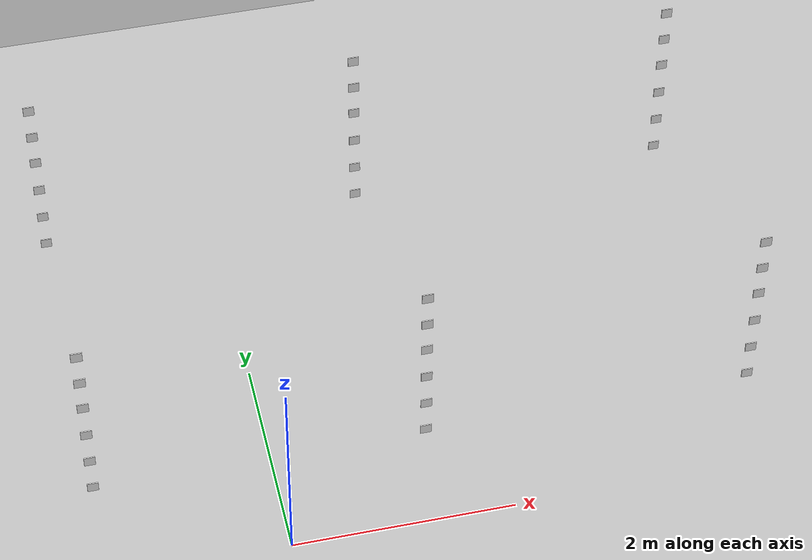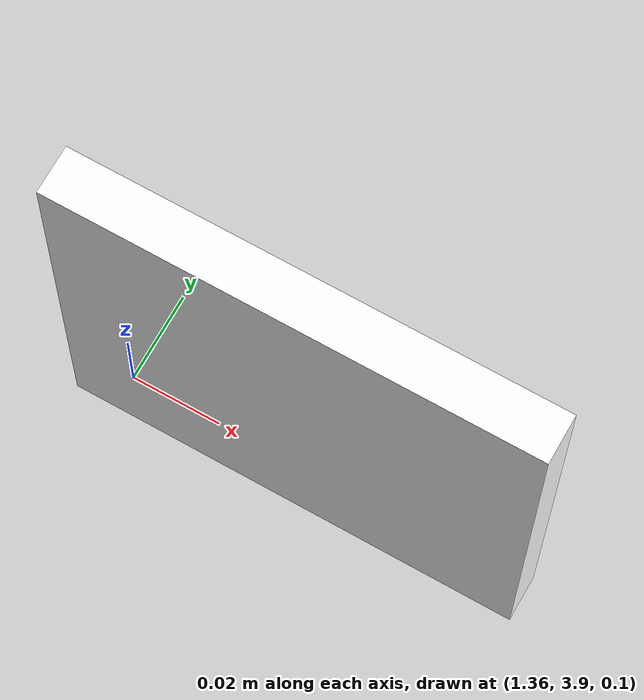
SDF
<sdf version="1.6">
 <world name="default">
  <include><uri>model://ground_plane</uri></include>
  <include><uri>model://sun</uri></include>
  <model name="stag_r1c1_l1">
   <static>true</static>
   <pose>-1.6 0.9 0.146 1.5708 0 0</pose>
   <link name="marker_link">
    <collision name="collision"><geometry><box><size>0.1 0.1 0.01</size></box></geometry></collision>
    <visual name="visual">
     <geometry><box><size>0.1 0.1 0.01</size></box></geometry>
     <material>
      <script>
       <uri>model://STag_marker/materials/scripts</uri>
       <uri>model://STag_marker/materials/textures</uri>
       <name>STagMarker/marker_00219</name>
      </script>
      <ambient>1 1 1 1</ambient>
      <diffuse>1 1 1 1</diffuse>
     </material>
     <pose>0 0 0.001 0 0 0</pose>
    </visual>
   </link>
  </model>
  <model name="stag_r1c1_l2">
   <static>true</static>
   <pose>-1.6 0.9 0.506 1.5708 0 0</pose>
   <link name="marker_link">
    <collision name="collision"><geometry><box><size>0.1 0.1 0.01</size></box></geometry></collision>
    <visual name="visual">
     <geometry><box><size>0.1 0.1 0.01</size></box></geometry>
     <material>
      <script>
       <uri>model://STag_marker/materials/scripts</uri>
       <uri>model://STag_marker/materials/textures</uri>
       <name>STagMarker/marker_00261</name>
      </script>
      <ambient>1 1 1 1</ambient>
      <diffuse>1 1 1 1</diffuse>
     </material>
     <pose>0 0 0.001 0 0 0</pose>
    </visual>
   </link>
  </model>
  <model name="stag_r1c1_l3">
   <static>true</static>
   <pose>-1.6 0.9 0.867 1.5708 0 0</pose>
   <link name="marker_link">
    <collision name="collision"><geometry><box><size>0.1 0.1 0.01</size></box></geometry></collision>
    <visual name="visual">
     <geometry><box><size>0.1 0.1 0.01</size></box></geometry>
     <material>
      <script>
       <uri>model://STag_marker/materials/scripts</uri>
       <uri>model://STag_marker/materials/textures</uri>
       <name>STagMarker/marker_00426</name>
      </script>
      <ambient>1 1 1 1</ambient>
      <diffuse>1 1 1 1</diffuse>
     </material>
     <pose>0 0 0.001 0 0 0</pose>
    </visual>
   </link>
  </model>
  <model name="stag_r1c1_l4">
   <static>true</static>
   <pose>-1.6 0.9 1.227 1.5708 0 0</pose>
   <link name="marker_link">
    <collision name="collision"><geometry><box><size>0.1 0.1 0.01</size></box></geometry></collision>
    <visual name="visual">
     <geometry><box><size>0.1 0.1 0.01</size></box></geometry>
     <material>
      <script>
       <uri>model://STag_marker/materials/scripts</uri>
       <uri>model://STag_marker/materials/textures</uri>
       <name>STagMarker/marker_00519</name>
      </script>
      <ambient>1 1 1 1</ambient>
      <diffuse>1 1 1 1</diffuse>
     </material>
     <pose>0 0 0.001 0 0 0</pose>
    </visual>
   </link>
  </model>
  <model name="stag_r1c1_l5">
   <static>true</static>
   <pose>-1.6 0.9 1.556 1.5708 0 0</pose>
   <link name="marker_link">
    <collision name="collision"><geometry><box><size>0.1 0.1 0.01</size></box></geometry></collision>
    <visual name="visual">
     <geometry><box><size>0.1 0.1 0.01</size></box></geometry>
     <material>
      <script>
       <uri>model://STag_marker/materials/scripts</uri>
       <uri>model://STag_marker/materials/textures</uri>
       <name>STagMarker/marker_00525</name>
      </script>
      <ambient>1 1 1 1</ambient>
      <diffuse>1 1 1 1</diffuse>
     </material>
     <pose>0 0 0.001 0 0 0</pose>
    </visual>
   </link>
  </model>
  <model name="stag_r1c1_l6">
   <static>true</static>
   <pose>-1.6 0.9 1.886 1.5708 0 0</pose>
   <link name="marker_link">
    <collision name="collision"><geometry><box><size>0.1 0.1 0.01</size></box></geometry></collision>
    <visual name="visual">
     <geometry><box><size>0.1 0.1 0.01</size></box></geometry>
     <material>
      <script>
       <uri>model://STag_marker/materials/scripts</uri>
       <uri>model://STag_marker/materials/textures</uri>
       <name>STagMarker/marker_00526</name>
      </script>
      <ambient>1 1 1 1</ambient>
      <diffuse>1 1 1 1</diffuse>
     </material>
     <pose>0 0 0.001 0 0 0</pose>
    </visual>
   </link>
  </model>
  <model name="stag_r1c2_l1">
   <static>true</static>
   <pose>1.4 0.9 0.146 1.5708 0 0</pose>
   <link name="marker_link">
    <collision name="collision"><geometry><box><size>0.1 0.1 0.01</size></box></geometry></collision>
    <visual name="visual">
     <geometry><box><size>0.1 0.1 0.01</size></box></geometry>
     <material>
      <script>
       <uri>model://STag_marker/materials/scripts</uri>
       <uri>model://STag_marker/materials/textures</uri>
       <name>STagMarker/marker_00537</name>
      </script>
      <ambient>1 1 1 1</ambient>
      <diffuse>1 1 1 1</diffuse>
     </material>
     <pose>0 0 0.001 0 0 0</pose>
    </visual>
   </link>
  </model>
  <model name="stag_r1c2_l2">
   <static>true</static>
   <pose>1.4 0.9 0.506 1.5708 0 0</pose>
   <link name="marker_link">
    <collision name="collision"><geometry><box><size>0.1 0.1 0.01</size></box></geometry></collision>
    <visual name="visual">
     <geometry><box><size>0.1 0.1 0.01</size></box></geometry>
     <material>
      <script>
       <uri>model://STag_marker/materials/scripts</uri>
       <uri>model://STag_marker/materials/textures</uri>
       <name>STagMarker/marker_00563</name>
      </script>
      <ambient>1 1 1 1</ambient>
      <diffuse>1 1 1 1</diffuse>
     </material>
     <pose>0 0 0.001 0 0 0</pose>
    </visual>
   </link>
  </model>
  <model name="stag_r1c2_l3">
   <static>true</static>
   <pose>1.4 0.9 0.867 1.5708 0 0</pose>
   <link name="marker_link">
    <collision name="collision"><geometry><box><size>0.1 0.1 0.01</size></box></geometry></collision>
    <visual name="visual">
     <geometry><box><size>0.1 0.1 0.01</size></box></geometry>
     <material>
      <script>
       <uri>model://STag_marker/materials/scripts</uri>
       <uri>model://STag_marker/materials/textures</uri>
       <name>STagMarker/marker_00578</name>
      </script>
      <ambient>1 1 1 1</ambient>
      <diffuse>1 1 1 1</diffuse>
     </material>
     <pose>0 0 0.001 0 0 0</pose>
    </visual>
   </link>
  </model>
  <model name="stag_r1c2_l4">
   <static>true</static>
   <pose>1.4 0.9 1.227 1.5708 0 0</pose>
   <link name="marker_link">
    <collision name="collision"><geometry><box><size>0.1 0.1 0.01</size></box></geometry></collision>
    <visual name="visual">
     <geometry><box><size>0.1 0.1 0.01</size></box></geometry>
     <material>
      <script>
       <uri>model://STag_marker/materials/scripts</uri>
       <uri>model://STag_marker/materials/textures</uri>
       <name>STagMarker/marker_00679</name>
      </script>
      <ambient>1 1 1 1</ambient>
      <diffuse>1 1 1 1</diffuse>
     </material>
     <pose>0 0 0.001 0 0 0</pose>
    </visual>
   </link>
  </model>
  <model name="stag_r1c2_l5">
   <static>true</static>
   <pose>1.4 0.9 1.556 1.5708 0 0</pose>
   <link name="marker_link">
    <collision name="collision"><geometry><box><size>0.1 0.1 0.01</size></box></geometry></collision>
    <visual name="visual">
     <geometry><box><size>0.1 0.1 0.01</size></box></geometry>
     <material>
      <script>
       <uri>model://STag_marker/materials/scripts</uri>
       <uri>model://STag_marker/materials/textures</uri>
       <name>STagMarker/marker_00800</name>
      </script>
      <ambient>1 1 1 1</ambient>
      <diffuse>1 1 1 1</diffuse>
     </material>
     <pose>0 0 0.001 0 0 0</pose>
    </visual>
   </link>
  </model>
  <model name="stag_r1c2_l6">
   <static>true</static>
   <pose>1.4 0.9 1.886 1.5708 0 0</pose>
   <link name="marker_link">
    <collision name="collision"><geometry><box><size>0.1 0.1 0.01</size></box></geometry></collision>
    <visual name="visual">
     <geometry><box><size>0.1 0.1 0.01</size></box></geometry>
     <material>
      <script>
       <uri>model://STag_marker/materials/scripts</uri>
       <uri>model://STag_marker/materials/textures</uri>
       <name>STagMarker/marker_00848</name>
      </script>
      <ambient>1 1 1 1</ambient>
      <diffuse>1 1 1 1</diffuse>
     </material>
     <pose>0 0 0.001 0 0 0</pose>
    </visual>
   </link>
  </model>
  <model name="stag_r1c3_l1">
   <static>true</static>
   <pose>4.4 0.9 0.146 1.5708 0 0</pose>
   <link name="marker_link">
    <collision name="collision"><geometry><box><size>0.1 0.1 0.01</size></box></geometry></collision>
    <visual name="visual">
     <geometry><box><size>0.1 0.1 0.01</size></box></geometry>
     <material>
      <script>
       <uri>model://STag_marker/materials/scripts</uri>
       <uri>model://STag_marker/materials/textures</uri>
       <name>STagMarker/marker_01138</name>
      </script>
      <ambient>1 1 1 1</ambient>
      <diffuse>1 1 1 1</diffuse>
     </material>
     <pose>0 0 0.001 0 0 0</pose>
    </visual>
   </link>
  </model>
  <model name="stag_r1c3_l2">
   <static>true</static>
   <pose>4.4 0.9 0.506 1.5708 0 0</pose>
   <link name="marker_link">
    <collision name="collision"><geometry><box><size>0.1 0.1 0.01</size></box></geometry></collision>
    <visual name="visual">
     <geometry><box><size>0.1 0.1 0.01</size></box></geometry>
     <material>
      <script>
       <uri>model://STag_marker/materials/scripts</uri>
       <uri>model://STag_marker/materials/textures</uri>
       <name>STagMarker/marker_01181</name>
      </script>
      <ambient>1 1 1 1</ambient>
      <diffuse>1 1 1 1</diffuse>
     </material>
     <pose>0 0 0.001 0 0 0</pose>
    </visual>
   </link>
  </model>
  <model name="stag_r1c3_l3">
   <static>true</static>
   <pose>4.4 0.9 0.867 1.5708 0 0</pose>
   <link name="marker_link">
    <collision name="collision"><geometry><box><size>0.1 0.1 0.01</size></box></geometry></collision>
    <visual name="visual">
     <geometry><box><size>0.1 0.1 0.01</size></box></geometry>
     <material>
      <script>
       <uri>model://STag_marker/materials/scripts</uri>
       <uri>model://STag_marker/materials/textures</uri>
       <name>STagMarker/marker_01311</name>
      </script>
      <ambient>1 1 1 1</ambient>
      <diffuse>1 1 1 1</diffuse>
     </material>
     <pose>0 0 0.001 0 0 0</pose>
    </visual>
   </link>
  </model>
  <model name="stag_r1c3_l4">
   <static>true</static>
   <pose>4.4 0.9 1.227 1.5708 0 0</pose>
   <link name="marker_link">
    <collision name="collision"><geometry><box><size>0.1 0.1 0.01</size></box></geometry></collision>
    <visual name="visual">
     <geometry><box><size>0.1 0.1 0.01</size></box></geometry>
     <material>
      <script>
       <uri>model://STag_marker/materials/scripts</uri>
       <uri>model://STag_marker/materials/textures</uri>
       <name>STagMarker/marker_01391</name>
      </script>
      <ambient>1 1 1 1</ambient>
      <diffuse>1 1 1 1</diffuse>
     </material>
     <pose>0 0 0.001 0 0 0</pose>
    </visual>
   </link>
  </model>
  <model name="stag_r1c3_l5">
   <static>true</static>
   <pose>4.4 0.9 1.556 1.5708 0 0</pose>
   <link name="marker_link">
    <collision name="collision"><geometry><box><size>0.1 0.1 0.01</size></box></geometry></collision>
    <visual name="visual">
     <geometry><box><size>0.1 0.1 0.01</size></box></geometry>
     <material>
      <script>
       <uri>model://STag_marker/materials/scripts</uri>
       <uri>model://STag_marker/materials/textures</uri>
       <name>STagMarker/marker_01396</name>
      </script>
      <ambient>1 1 1 1</ambient>
      <diffuse>1 1 1 1</diffuse>
     </material>
     <pose>0 0 0.001 0 0 0</pose>
    </visual>
   </link>
  </model>
  <model name="stag_r1c3_l6">
   <static>true</static>
   <pose>4.4 0.9 1.886 1.5708 0 0</pose>
   <link name="marker_link">
    <collision name="collision"><geometry><box><size>0.1 0.1 0.01</size></box></geometry></collision>
    <visual name="visual">
     <geometry><box><size>0.1 0.1 0.01</size></box></geometry>
     <material>
      <script>
       <uri>model://STag_marker/materials/scripts</uri>
       <uri>model://STag_marker/materials/textures</uri>
       <name>STagMarker/marker_01451</name>
      </script>
      <ambient>1 1 1 1</ambient>
      <diffuse>1 1 1 1</diffuse>
     </material>
     <pose>0 0 0.001 0 0 0</pose>
    </visual>
   </link>
  </model>
  <model name="stag_r2c1_l1">
   <static>true</static>
   <pose>-1.6 3.9 0.146 1.5708 0 0</pose>
   <link name="marker_link">
    <collision name="collision"><geometry><box><size>0.1 0.1 0.01</size></box></geometry></collision>
    <visual name="visual">
     <geometry><box><size>0.1 0.1 0.01</size></box></geometry>
     <material>
      <script>
       <uri>model://STag_marker/materials/scripts</uri>
       <uri>model://STag_marker/materials/textures</uri>
       <name>STagMarker/marker_01509</name>
      </script>
      <ambient>1 1 1 1</ambient>
      <diffuse>1 1 1 1</diffuse>
     </material>
     <pose>0 0 0.001 0 0 0</pose>
    </visual>
   </link>
  </model>
  <model name="stag_r2c1_l2">
   <static>true</static>
   <pose>-1.6 3.9 0.506 1.5708 0 0</pose>
   <link name="marker_link">
    <collision name="collision"><geometry><box><size>0.1 0.1 0.01</size></box></geometry></collision>
    <visual name="visual">
     <geometry><box><size>0.1 0.1 0.01</size></box></geometry>
     <material>
      <script>
       <uri>model://STag_marker/materials/scripts</uri>
       <uri>model://STag_marker/materials/textures</uri>
       <name>STagMarker/marker_01579</name>
      </script>
      <ambient>1 1 1 1</ambient>
      <diffuse>1 1 1 1</diffuse>
     </material>
     <pose>0 0 0.001 0 0 0</pose>
    </visual>
   </link>
  </model>
  <model name="stag_r2c1_l3">
   <static>true</static>
   <pose>-1.6 3.9 0.867 1.5708 0 0</pose>
   <link name="marker_link">
    <collision name="collision"><geometry><box><size>0.1 0.1 0.01</size></box></geometry></collision>
    <visual name="visual">
     <geometry><box><size>0.1 0.1 0.01</size></box></geometry>
     <material>
      <script>
       <uri>model://STag_marker/materials/scripts</uri>
       <uri>model://STag_marker/materials/textures</uri>
       <name>STagMarker/marker_01603</name>
      </script>
      <ambient>1 1 1 1</ambient>
      <diffuse>1 1 1 1</diffuse>
     </material>
     <pose>0 0 0.001 0 0 0</pose>
    </visual>
   </link>
  </model>
  <model name="stag_r2c1_l4">
   <static>true</static>
   <pose>-1.6 3.9 1.227 1.5708 0 0</pose>
   <link name="marker_link">
    <collision name="collision"><geometry><box><size>0.1 0.1 0.01</size></box></geometry></collision>
    <visual name="visual">
     <geometry><box><size>0.1 0.1 0.01</size></box></geometry>
     <material>
      <script>
       <uri>model://STag_marker/materials/scripts</uri>
       <uri>model://STag_marker/materials/textures</uri>
       <name>STagMarker/marker_01630</name>
      </script>
      <ambient>1 1 1 1</ambient>
      <diffuse>1 1 1 1</diffuse>
     </material>
     <pose>0 0 0.001 0 0 0</pose>
    </visual>
   </link>
  </model>
  <model name="stag_r2c1_l5">
   <static>true</static>
   <pose>-1.6 3.9 1.556 1.5708 0 0</pose>
   <link name="marker_link">
    <collision name="collision"><geometry><box><size>0.1 0.1 0.01</size></box></geometry></collision>
    <visual name="visual">
     <geometry><box><size>0.1 0.1 0.01</size></box></geometry>
     <material>
      <script>
       <uri>model://STag_marker/materials/scripts</uri>
       <uri>model://STag_marker/materials/textures</uri>
       <name>STagMarker/marker_01654</name>
      </script>
      <ambient>1 1 1 1</ambient>
      <diffuse>1 1 1 1</diffuse>
     </material>
     <pose>0 0 0.001 0 0 0</pose>
    </visual>
   </link>
  </model>
  <model name="stag_r2c1_l6">
   <static>true</static>
   <pose>-1.6 3.9 1.886 1.5708 0 0</pose>
   <link name="marker_link">
    <collision name="collision"><geometry><box><size>0.1 0.1 0.01</size></box></geometry></collision>
    <visual name="visual">
     <geometry><box><size>0.1 0.1 0.01</size></box></geometry>
     <material>
      <script>
       <uri>model://STag_marker/materials/scripts</uri>
       <uri>model://STag_marker/materials/textures</uri>
       <name>STagMarker/marker_01690</name>
      </script>
      <ambient>1 1 1 1</ambient>
      <diffuse>1 1 1 1</diffuse>
     </material>
     <pose>0 0 0.001 0 0 0</pose>
    </visual>
   </link>
  </model>
  <model name="stag_r2c2_l1">
   <static>true</static>
   <pose>1.4 3.9 0.146 1.5708 0 0</pose>
   <link name="marker_link">
    <collision name="collision"><geometry><box><size>0.1 0.1 0.01</size></box></geometry></collision>
    <visual name="visual">
     <geometry><box><size>0.1 0.1 0.01</size></box></geometry>
     <material>
      <script>
       <uri>model://STag_marker/materials/scripts</uri>
       <uri>model://STag_marker/materials/textures</uri>
       <name>STagMarker/marker_01824</name>
      </script>
      <ambient>1 1 1 1</ambient>
      <diffuse>1 1 1 1</diffuse>
     </material>
     <pose>0 0 0.001 0 0 0</pose>
    </visual>
   </link>
  </model>
  <model name="stag_r2c2_l2">
   <static>true</static>
   <pose>1.4 3.9 0.506 1.5708 0 0</pose>
   <link name="marker_link">
    <collision name="collision"><geometry><box><size>0.1 0.1 0.01</size></box></geometry></collision>
    <visual name="visual">
     <geometry><box><size>0.1 0.1 0.01</size></box></geometry>
     <material>
      <script>
       <uri>model://STag_marker/materials/scripts</uri>
       <uri>model://STag_marker/materials/textures</uri>
       <name>STagMarker/marker_01862</name>
      </script>
      <ambient>1 1 1 1</ambient>
      <diffuse>1 1 1 1</diffuse>
     </material>
     <pose>0 0 0.001 0 0 0</pose>
    </visual>
   </link>
  </model>
  <model name="stag_r2c2_l3">
   <static>true</static>
   <pose>1.4 3.9 0.867 1.5708 0 0</pose>
   <link name="marker_link">
    <collision name="collision"><geometry><box><size>0.1 0.1 0.01</size></box></geometry></collision>
    <visual name="visual">
     <geometry><box><size>0.1 0.1 0.01</size></box></geometry>
     <material>
      <script>
       <uri>model://STag_marker/materials/scripts</uri>
       <uri>model://STag_marker/materials/textures</uri>
       <name>STagMarker/marker_01928</name>
      </script>
      <ambient>1 1 1 1</ambient>
      <diffuse>1 1 1 1</diffuse>
     </material>
     <pose>0 0 0.001 0 0 0</pose>
    </visual>
   </link>
  </model>
  <model name="stag_r2c2_l4">
   <static>true</static>
   <pose>1.4 3.9 1.227 1.5708 0 0</pose>
   <link name="marker_link">
    <collision name="collision"><geometry><box><size>0.1 0.1 0.01</size></box></geometry></collision>
    <visual name="visual">
     <geometry><box><size>0.1 0.1 0.01</size></box></geometry>
     <material>
      <script>
       <uri>model://STag_marker/materials/scripts</uri>
       <uri>model://STag_marker/materials/textures</uri>
       <name>STagMarker/marker_01999</name>
      </script>
      <ambient>1 1 1 1</ambient>
      <diffuse>1 1 1 1</diffuse>
     </material>
     <pose>0 0 0.001 0 0 0</pose>
    </visual>
   </link>
  </model>
  <model name="stag_r2c2_l5">
   <static>true</static>
   <pose>1.4 3.9 1.556 1.5708 0 0</pose>
   <link name="marker_link">
    <collision name="collision"><geometry><box><size>0.1 0.1 0.01</size></box></geometry></collision>
    <visual name="visual">
     <geometry><box><size>0.1 0.1 0.01</size></box></geometry>
     <material>
      <script>
       <uri>model://STag_marker/materials/scripts</uri>
       <uri>model://STag_marker/materials/textures</uri>
       <name>STagMarker/marker_02027</name>
      </script>
      <ambient>1 1 1 1</ambient>
      <diffuse>1 1 1 1</diffuse>
     </material>
     <pose>0 0 0.001 0 0 0</pose>
    </visual>
   </link>
  </model>
  <model name="stag_r2c2_l6">
   <static>true</static>
   <pose>1.4 3.9 1.886 1.5708 0 0</pose>
   <link name="marker_link">
    <collision name="collision"><geometry><box><size>0.1 0.1 0.01</size></box></geometry></collision>
    <visual name="visual">
     <geometry><box><size>0.1 0.1 0.01</size></box></geometry>
     <material>
      <script>
       <uri>model://STag_marker/materials/scripts</uri>
       <uri>model://STag_marker/materials/textures</uri>
       <name>STagMarker/marker_02149</name>
      </script>
      <ambient>1 1 1 1</ambient>
      <diffuse>1 1 1 1</diffuse>
     </material>
     <pose>0 0 0.001 0 0 0</pose>
    </visual>
   </link>
  </model>
  <model name="stag_r2c3_l1">
   <static>true</static>
   <pose>4.4 3.9 0.146 1.5708 0 0</pose>
   <link name="marker_link">
    <collision name="collision"><geometry><box><size>0.1 0.1 0.01</size></box></geometry></collision>
    <visual name="visual">
     <geometry><box><size>0.1 0.1 0.01</size></box></geometry>
     <material>
      <script>
       <uri>model://STag_marker/materials/scripts</uri>
       <uri>model://STag_marker/materials/textures</uri>
       <name>STagMarker/marker_02234</name>
      </script>
      <ambient>1 1 1 1</ambient>
      <diffuse>1 1 1 1</diffuse>
     </material>
     <pose>0 0 0.001 0 0 0</pose>
    </visual>
   </link>
  </model>
  <model name="stag_r2c3_l2">
   <static>true</static>
   <pose>4.4 3.9 0.506 1.5708 0 0</pose>
   <link name="marker_link">
    <collision name="collision"><geometry><box><size>0.1 0.1 0.01</size></box></geometry></collision>
    <visual name="visual">
     <geometry><box><size>0.1 0.1 0.01</size></box></geometry>
     <material>
      <script>
       <uri>model://STag_marker/materials/scripts</uri>
       <uri>model://STag_marker/materials/textures</uri>
       <name>STagMarker/marker_02269</name>
      </script>
      <ambient>1 1 1 1</ambient>
      <diffuse>1 1 1 1</diffuse>
     </material>
     <pose>0 0 0.001 0 0 0</pose>
    </visual>
   </link>
  </model>
  <model name="stag_r2c3_l3">
   <static>true</static>
   <pose>4.4 3.9 0.867 1.5708 0 0</pose>
   <link name="marker_link">
    <collision name="collision"><geometry><box><size>0.1 0.1 0.01</size></box></geometry></collision>
    <visual name="visual">
     <geometry><box><size>0.1 0.1 0.01</size></box></geometry>
     <material>
      <script>
       <uri>model://STag_marker/materials/scripts</uri>
       <uri>model://STag_marker/materials/textures</uri>
       <name>STagMarker/marker_02275</name>
      </script>
      <ambient>1 1 1 1</ambient>
      <diffuse>1 1 1 1</diffuse>
     </material>
     <pose>0 0 0.001 0 0 0</pose>
    </visual>
   </link>
  </model>
  <model name="stag_r2c3_l4">
   <static>true</static>
   <pose>4.4 3.9 1.227 1.5708 0 0</pose>
   <link name="marker_link">
    <collision name="collision"><geometry><box><size>0.1 0.1 0.01</size></box></geometry></collision>
    <visual name="visual">
     <geometry><box><size>0.1 0.1 0.01</size></box></geometry>
     <material>
      <script>
       <uri>model://STag_marker/materials/scripts</uri>
       <uri>model://STag_marker/materials/textures</uri>
       <name>STagMarker/marker_02288</name>
      </script>
      <ambient>1 1 1 1</ambient>
      <diffuse>1 1 1 1</diffuse>
     </material>
     <pose>0 0 0.001 0 0 0</pose>
    </visual>
   </link>
  </model>
  <model name="stag_r2c3_l5">
   <static>true</static>
   <pose>4.4 3.9 1.556 1.5708 0 0</pose>
   <link name="marker_link">
    <collision name="collision"><geometry><box><size>0.1 0.1 0.01</size></box></geometry></collision>
    <visual name="visual">
     <geometry><box><size>0.1 0.1 0.01</size></box></geometry>
     <material>
      <script>
       <uri>model://STag_marker/materials/scripts</uri>
       <uri>model://STag_marker/materials/textures</uri>
       <name>STagMarker/marker_02346</name>
      </script>
      <ambient>1 1 1 1</ambient>
      <diffuse>1 1 1 1</diffuse>
     </material>
     <pose>0 0 0.001 0 0 0</pose>
    </visual>
   </link>
  </model>
  <model name="stag_r2c3_l6">
   <static>true</static>
   <pose>4.4 3.9 1.886 1.5708 0 0</pose>
   <link name="marker_link">
    <collision name="collision"><geometry><box><size>0.1 0.1 0.01</size></box></geometry></collision>
    <visual name="visual">
     <geometry><box><size>0.1 0.1 0.01</size></box></geometry>
     <material>
      <script>
       <uri>model://STag_marker/materials/scripts</uri>
       <uri>model://STag_marker/materials/textures</uri>
       <name>STagMarker/marker_02365</name>
      </script>
      <ambient>1 1 1 1</ambient>
      <diffuse>1 1 1 1</diffuse>
     </material>
     <pose>0 0 0.001 0 0 0</pose>
    </visual>
   </link>
  </model>
 </world>
</sdf>
